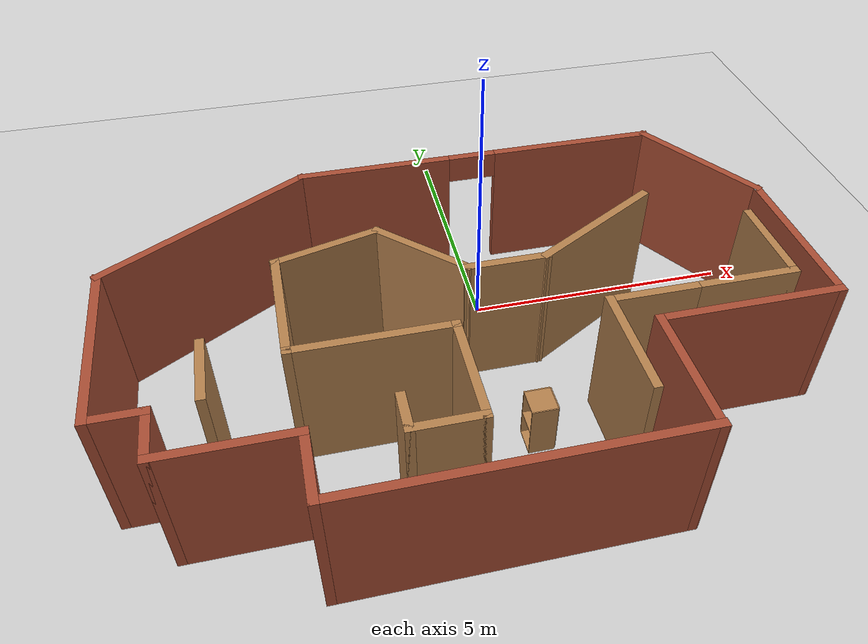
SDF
<sdf version="1.6">
 <world name="default">
  <light name="sun" type="directional">
   <pose>0 0 10 0 -0 0</pose>
   <diffuse>0.8 0.8 0.8 1</diffuse>
   <specular>0.1 0.1 0.1 1</specular>
   <attenuation>
    <range>1000</range>
    <constant>0.9</constant>
    <linear>0.01</linear>
    <quadratic>0.001</quadratic>
   </attenuation>
   <direction>-0.5 0.5 -1</direction>
  </light>
  <model name="ground_plane">
   <static>1</static>
   <link name="link">
    <collision name="collision">
     <geometry><plane><normal>0 0 1</normal><size>100 100</size></plane></geometry>
     <surface><friction><ode><mu>100</mu><mu2>50</mu2></ode></friction></surface>
    </collision>
    <visual name="visual">
     <cast_shadows>0</cast_shadows>
     <geometry><plane><normal>0 0 1</normal><size>100 100</size></plane></geometry>
     <material>
      <script><uri>file://media/materials/scripts/gazebo.material</uri><name>Gazebo/Grey</name></script>
     </material>
    </visual>
   </link>
  </model>
  <gravity>0 0 -9.8</gravity>
  <magnetic_field>6e-06 2.3e-05 -4.2e-05</magnetic_field>
  <atmosphere type="adiabatic"/>
  <physics name="default_physics" default="0" type="ode">
   <max_step_size>0.001</max_step_size>
   <real_time_factor>1</real_time_factor>
   <real_time_update_rate>1000</real_time_update_rate>
  </physics>
  <scene><ambient>0.4 0.4 0.4 1</ambient><background>0.7 0.7 0.7 1</background><shadows>1</shadows></scene>
  <spherical_coordinates>
   <surface_model>EARTH_WGS84</surface_model>
   <latitude_deg>0</latitude_deg>
   <longitude_deg>0</longitude_deg>
   <elevation>0</elevation>
   <heading_deg>0</heading_deg>
  </spherical_coordinates>
  <model name="myworld">
   <pose>-0.716396 -1.91106 0 0 -0 0</pose>
   <link name="Wall_10">
    <collision name="Wall_10_Collision">
     <geometry><box><size>1.75 0.15 2.5</size></box></geometry>
     <pose>0 0 1.25 0 -0 0</pose>
    </collision>
    <visual name="Wall_10_Visual">
     <pose>0 0 1.25 0 -0 0</pose>
     <geometry><box><size>1.75 0.15 2.5</size></box></geometry>
     <material>
      <script><uri>file://media/materials/scripts/gazebo.material</uri><name>Gazebo/Wood</name></script>
      <ambient>1 1 1 1</ambient>
     </material>
    </visual>
    <pose>5.32461 -0.097834 0 0 -0 1.5708</pose>
   </link>
   <link name="Wall_14">
    <collision name="Wall_14_Collision">
     <geometry><box><size>4.26973 0.15 2.5</size></box></geometry>
     <pose>0 0 1.25 0 -0 0</pose>
    </collision>
    <visual name="Wall_14_Visual">
     <pose>0 0 1.25 0 -0 0</pose>
     <geometry><box><size>4.26973 0.15 2.5</size></box></geometry>
     <material>
      <script><uri>file://media/materials/scripts/gazebo.material</uri><name>Gazebo/Bricks</name></script>
      <ambient>1 1 1 1</ambient>
     </material>
    </visual>
    <pose>-4.06148 2.53384 0 0 0 -2.59844</pose>
   </link>
   <link name="Wall_15">
    <collision name="Wall_15_Collision">
     <geometry><box><size>3.25 0.15 2.5</size></box></geometry>
     <pose>0 0 1.25 0 -0 0</pose>
    </collision>
    <visual name="Wall_15_Visual">
     <pose>0 0 1.25 0 -0 0</pose>
     <geometry><box><size>3.25 0.15 2.5</size></box></geometry>
     <material>
      <script><uri>file://media/materials/scripts/gazebo.material</uri><name>Gazebo/Bricks</name></script>
      <ambient>1 1 1 1</ambient>
     </material>
    </visual>
    <pose>-5.8249 -0.080771 0 0 0 -1.5708</pose>
   </link>
   <link name="Wall_16">
    <collision name="Wall_16_Collision">
     <geometry><box><size>1 0.15 2.5</size></box></geometry>
     <pose>0 0 1.25 0 -0 0</pose>
    </collision>
    <visual name="Wall_16_Visual">
     <pose>0 0 1.25 0 -0 0</pose>
     <geometry><box><size>1 0.15 2.5</size></box></geometry>
     <material>
      <script><uri>file://media/materials/scripts/gazebo.material</uri><name>Gazebo/Bricks</name></script>
      <ambient>1 1 1 1</ambient>
     </material>
    </visual>
    <pose>-5.3999 -1.63077 0 0 -0 0</pose>
   </link>
   <link name="Wall_17">
    <collision name="Wall_17_Collision">
     <geometry><box><size>1 0.15 2.5</size></box></geometry>
     <pose>0 0 1.25 0 -0 0</pose>
    </collision>
    <visual name="Wall_17_Visual">
     <pose>0 0 1.25 0 -0 0</pose>
     <geometry><box><size>1 0.15 2.5</size></box></geometry>
     <material>
      <script><uri>file://media/materials/scripts/gazebo.material</uri><name>Gazebo/Bricks</name></script>
      <ambient>1 1 1 1</ambient>
     </material>
    </visual>
    <pose>-4.9749 -2.05577 0 0 0 -1.5708</pose>
   </link>
   <link name="Wall_18">
    <collision name="Wall_18_Collision">
     <geometry><box><size>2.25 0.15 2.5</size></box></geometry>
     <pose>0 0 1.25 0 -0 0</pose>
    </collision>
    <visual name="Wall_18_Visual">
     <pose>0 0 1.25 0 -0 0</pose>
     <geometry><box><size>2.25 0.15 2.5</size></box></geometry>
     <material>
      <script><uri>file://media/materials/scripts/gazebo.material</uri><name>Gazebo/Bricks</name></script>
      <ambient>1 1 1 1</ambient>
     </material>
    </visual>
    <pose>-3.9249 -2.48077 0 0 -0 0</pose>
   </link>
   <link name="Wall_19">
    <collision name="Wall_19_Collision">
     <geometry><box><size>1.29565 0.15 2.5</size></box></geometry>
     <pose>0 0 1.25 0 -0 0</pose>
    </collision>
    <visual name="Wall_19_Visual">
     <pose>0 0 1.25 0 -0 0</pose>
     <geometry><box><size>1.29565 0.15 2.5</size></box></geometry>
     <material>
      <script><uri>file://media/materials/scripts/gazebo.material</uri><name>Gazebo/Bricks</name></script>
      <ambient>1 1 1 1</ambient>
     </material>
    </visual>
    <pose>-2.8749 -3.0536 0 0 0 -1.5708</pose>
   </link>
   <link name="Wall_20">
    <collision name="Wall_20_Collision">
     <geometry><box><size>5.75 0.15 2.5</size></box></geometry>
     <pose>0 0 1.25 0 -0 0</pose>
    </collision>
    <visual name="Wall_20_Visual">
     <pose>0 0 1.25 0 -0 0</pose>
     <geometry><box><size>5.75 0.15 2.5</size></box></geometry>
     <material>
      <script><uri>file://media/materials/scripts/gazebo.material</uri><name>Gazebo/Bricks</name></script>
      <ambient>1 1 1 1</ambient>
     </material>
    </visual>
    <pose>-0.057512 -3.62642 0 0 -0 0</pose>
   </link>
   <link name="Wall_21">
    <collision name="Wall_21_Collision">
     <geometry><box><size>2.29565 0.15 2.5</size></box></geometry>
     <pose>0 0 1.25 0 -0 0</pose>
    </collision>
    <visual name="Wall_21_Visual">
     <pose>0 0 1.25 0 -0 0</pose>
     <geometry><box><size>2.29565 0.15 2.5</size></box></geometry>
     <material>
      <script><uri>file://media/materials/scripts/gazebo.material</uri><name>Gazebo/Bricks</name></script>
      <ambient>1 1 1 1</ambient>
     </material>
    </visual>
    <pose>2.7251 -2.5536 0 0 -0 1.5708</pose>
   </link>
   <link name="Wall_22">
    <collision name="Wall_22_Collision">
     <geometry><box><size>3.25 0.15 2.5</size></box></geometry>
     <pose>0 0 1.25 0 -0 0</pose>
    </collision>
    <visual name="Wall_22_Visual">
     <pose>0 0 1.25 0 -0 0</pose>
     <geometry><box><size>3.25 0.15 2.5</size></box></geometry>
     <material>
      <script><uri>file://media/materials/scripts/gazebo.material</uri><name>Gazebo/Bricks</name></script>
      <ambient>1 1 1 1</ambient>
     </material>
    </visual>
    <pose>4.2751 -1.48077 0 0 -0 0</pose>
   </link>
   <link name="Wall_23">
    <collision name="Wall_23_Collision">
     <geometry><box><size>3 0.15 2.5</size></box></geometry>
     <pose>0 0 1.25 0 -0 0</pose>
    </collision>
    <visual name="Wall_23_Visual">
     <pose>0 0 1.25 0 -0 0</pose>
     <geometry><box><size>3 0.15 2.5</size></box></geometry>
     <material>
      <script><uri>file://media/materials/scripts/gazebo.material</uri><name>Gazebo/Bricks</name></script>
      <ambient>1 1 1 1</ambient>
     </material>
    </visual>
    <pose>5.8251 -0.055771 0 0 -0 1.5708</pose>
   </link>
   <link name="Wall_24">
    <collision name="Wall_24_Collision">
     <geometry><box><size>0.15 0.15 2.5</size></box></geometry>
     <pose>0 0 1.25 0 -0 0</pose>
    </collision>
    <visual name="Wall_24_Visual">
     <pose>0 0 1.25 0 -0 0</pose>
     <geometry><box><size>0.15 0.15 2.5</size></box></geometry>
     <material>
      <script><uri>file://media/materials/scripts/gazebo.material</uri><name>Gazebo/Grey</name></script>
      <ambient>1 1 1 1</ambient>
     </material>
    </visual>
    <pose>5.8251 1.36923 0 0 -0 0</pose>
   </link>
   <link name="Wall_25">
    <collision name="Wall_25_Collision">
     <geometry><box><size>2.74234 0.15 2.5</size></box></geometry>
     <pose>0 0 1.25 0 -0 0</pose>
    </collision>
    <visual name="Wall_25_Visual">
     <pose>0 0 1.25 0 -0 0</pose>
     <geometry><box><size>2.74234 0.15 2.5</size></box></geometry>
     <material>
      <script><uri>file://media/materials/scripts/gazebo.material</uri><name>Gazebo/Bricks</name></script>
      <ambient>1 1 1 1</ambient>
     </material>
    </visual>
    <pose>5.16352 2.48384 0 0 -0 2.10646</pose>
   </link>
   <link name="Wall_26">
    <pose>1.11714 3.59845 0 0 -0 3.14159</pose>
    <visual name="Wall_26_Visual_0">
     <pose>-1.89193 0 1.25 0 -0 0</pose>
     <geometry><box><size>3.16615 0.15 2.5</size></box></geometry>
     <material>
      <script><uri>file://media/materials/scripts/gazebo.material</uri><name>Gazebo/Bricks</name></script>
      <ambient>1 1 1 1</ambient>
     </material>
    </visual>
    <collision name="Wall_26_Collision_0">
     <geometry><box><size>3.16615 0.15 2.5</size></box></geometry>
     <pose>-1.89193 0 1.25 0 -0 0</pose>
    </collision>
    <visual name="Wall_26_Visual_1">
     <pose>2.03307 0 1.25 0 -0 0</pose>
     <geometry><box><size>2.88385 0.15 2.5</size></box></geometry>
     <material>
      <script><uri>file://media/materials/scripts/gazebo.material</uri><name>Gazebo/Bricks</name></script>
      <ambient>1 1 1 1</ambient>
     </material>
    </visual>
    <collision name="Wall_26_Collision_1">
     <geometry><box><size>2.88385 0.15 2.5</size></box></geometry>
     <pose>2.03307 0 1.25 0 -0 0</pose>
    </collision>
    <visual name="Wall_26_Visual_2">
     <pose>0.141146 0 2.25 0 -0 0</pose>
     <geometry><box><size>0.9 0.15 0.5</size></box></geometry>
     <material>
      <script><uri>file://media/materials/scripts/gazebo.material</uri><name>Gazebo/Bricks</name></script>
      <ambient>1 1 1 1</ambient>
     </material>
    </visual>
    <collision name="Wall_26_Collision_2">
     <geometry><box><size>0.9 0.15 0.5</size></box></geometry>
     <pose>0.141146 0 2.25 0 -0 0</pose>
    </collision>
   </link>
   <link name="Wall_28">
    <collision name="Wall_28_Collision">
     <geometry><box><size>1.25 0.15 2.5</size></box></geometry>
     <pose>0 0 1.25 0 -0 0</pose>
    </collision>
    <visual name="Wall_28_Visual">
     <pose>0 0 1.25 0 -0 0</pose>
     <geometry><box><size>1.25 0.15 2.5</size></box></geometry>
     <material>
      <script><uri>file://media/materials/scripts/gazebo.material</uri><name>Gazebo/Wood</name></script>
      <ambient>1 1 1 1</ambient>
     </material>
    </visual>
    <pose>-0.925386 -2.74783 0 0 -0 0</pose>
   </link>
   <link name="Wall_29">
    <collision name="Wall_29_Collision">
     <geometry><box><size>2 0.15 2.5</size></box></geometry>
     <pose>0 0 1.25 0 -0 0</pose>
    </collision>
    <visual name="Wall_29_Visual">
     <pose>0 0 1.25 0 -0 0</pose>
     <geometry><box><size>2 0.15 2.5</size></box></geometry>
     <material>
      <script><uri>file://media/materials/scripts/gazebo.material</uri><name>Gazebo/Wood</name></script>
      <ambient>1 1 1 1</ambient>
     </material>
    </visual>
    <pose>-0.375386 -1.82283 0 0 -0 1.5708</pose>
   </link>
   <link name="Wall_30">
    <collision name="Wall_30_Collision">
     <geometry><box><size>2.75 0.15 2.5</size></box></geometry>
     <pose>0 0 1.25 0 -0 0</pose>
    </collision>
    <visual name="Wall_30_Visual">
     <pose>0 0 1.25 0 -0 0</pose>
     <geometry><box><size>2.75 0.15 2.5</size></box></geometry>
     <material>
      <script><uri>file://media/materials/scripts/gazebo.material</uri><name>Gazebo/Wood</name></script>
      <ambient>1 1 1 1</ambient>
     </material>
    </visual>
    <pose>-1.67539 -0.897834 0 0 -0 3.14159</pose>
   </link>
   <link name="Wall_35">
    <collision name="Wall_35_Collision">
     <geometry><box><size>2.25 0.15 2.5</size></box></geometry>
     <pose>0 0 1.25 0 -0 0</pose>
    </collision>
    <visual name="Wall_35_Visual">
     <pose>0 0 1.25 0 -0 0</pose>
     <geometry><box><size>2.25 0.15 2.5</size></box></geometry>
     <material>
      <script><uri>file://media/materials/scripts/gazebo.material</uri><name>Gazebo/Wood</name></script>
      <ambient>1 1 1 1</ambient>
     </material>
    </visual>
    <pose>-2.97539 0.152166 0 0 -0 1.5708</pose>
   </link>
   <link name="Wall_36">
    <collision name="Wall_36_Collision">
     <geometry><box><size>2 0.15 2.5</size></box></geometry>
     <pose>0 0 1.25 0 -0 0</pose>
    </collision>
    <visual name="Wall_36_Visual">
     <pose>0 0 1.25 0 -0 0</pose>
     <geometry><box><size>2 0.15 2.5</size></box></geometry>
     <material>
      <script><uri>file://media/materials/scripts/gazebo.material</uri><name>Gazebo/Wood</name></script>
      <ambient>1 1 1 1</ambient>
     </material>
    </visual>
    <pose>-2.0819 1.44157 0 0 -0 0.261799</pose>
   </link>
   <link name="Wall_37">
    <collision name="Wall_37_Collision">
     <geometry><box><size>2 0.15 2.5</size></box></geometry>
     <pose>0 0 1.25 0 -0 0</pose>
    </collision>
    <visual name="Wall_37_Visual">
     <pose>0 0 1.25 0 -0 0</pose>
     <geometry><box><size>2 0.15 2.5</size></box></geometry>
     <material>
      <script><uri>file://media/materials/scripts/gazebo.material</uri><name>Gazebo/Wood</name></script>
      <ambient>1 1 1 1</ambient>
     </material>
    </visual>
    <pose>-0.534349 1.02691 0 0 0 -0.785398</pose>
   </link>
   <link name="Wall_38">
    <collision name="Wall_38_Collision">
     <geometry><box><size>1.5 0.15 2.5</size></box></geometry>
     <pose>0 0 1.25 0 -0 0</pose>
    </collision>
    <visual name="Wall_38_Visual">
     <pose>0 0 1.25 0 -0 0</pose>
     <geometry><box><size>1.5 0.15 2.5</size></box></geometry>
     <material>
      <script><uri>file://media/materials/scripts/gazebo.material</uri><name>Gazebo/Wood</name></script>
      <ambient>1 1 1 1</ambient>
     </material>
    </visual>
    <pose>0.794724 0.372834 0 0 -0 0</pose>
   </link>
   <link name="Wall_39">
    <collision name="Wall_39_Collision">
     <geometry><box><size>2.75 0.15 2.5</size></box></geometry>
     <pose>0 0 1.25 0 -0 0</pose>
    </collision>
    <visual name="Wall_39_Visual">
     <pose>0 0 1.25 0 -0 0</pose>
     <geometry><box><size>2.75 0.15 2.5</size></box></geometry>
     <material>
      <script><uri>file://media/materials/scripts/gazebo.material</uri><name>Gazebo/Wood</name></script>
      <ambient>1 1 1 1</ambient>
     </material>
    </visual>
    <pose>2.59556 1.02283 0 0 -0 0.523599</pose>
   </link>
   <link name="Wall_41">
    <collision name="Wall_41_Collision">
     <geometry><box><size>1.25 0.15 2.5</size></box></geometry>
     <pose>0 0 1.25 0 -0 0</pose>
    </collision>
    <visual name="Wall_41_Visual">
     <pose>0 0 1.25 0 -0 0</pose>
     <geometry><box><size>1.25 0.15 2.5</size></box></geometry>
     <material>
      <script><uri>file://media/materials/scripts/gazebo.material</uri><name>Gazebo/Wood</name></script>
      <ambient>1 1 1 1</ambient>
     </material>
    </visual>
    <pose>-4.2259 -0.982226 0 0 0 -1.5708</pose>
   </link>
   <link name="Wall_5">
    <collision name="Wall_5_Collision">
     <geometry><box><size>0.75 0.15 2.5</size></box></geometry>
     <pose>0 0 1.25 0 -0 0</pose>
    </collision>
    <visual name="Wall_5_Visual">
     <pose>0 0 1.25 0 -0 0</pose>
     <geometry><box><size>0.75 0.15 2.5</size></box></geometry>
     <material>
      <script><uri>file://media/materials/scripts/gazebo.material</uri><name>Gazebo/Wood</name></script>
      <ambient>1 1 1 1</ambient>
     </material>
    </visual>
    <pose>-1.47539 -2.44783 0 0 0 -1.5708</pose>
   </link>
   <link name="Wall_7">
    <collision name="Wall_7_Collision">
     <geometry><box><size>2 0.15 2.5</size></box></geometry>
     <pose>0 0 1.25 0 -0 0</pose>
    </collision>
    <visual name="Wall_7_Visual">
     <pose>0 0 1.25 0 -0 0</pose>
     <geometry><box><size>2 0.15 2.5</size></box></geometry>
     <material>
      <script><uri>file://media/materials/scripts/gazebo.material</uri><name>Gazebo/Wood</name></script>
      <ambient>1 1 1 1</ambient>
     </material>
    </visual>
    <pose>2.12461 -1.82283 0 0 -0 1.5708</pose>
   </link>
   <link name="Wall_8">
    <collision name="Wall_8_Collision">
     <geometry><box><size>1.75 0.15 2.5</size></box></geometry>
     <pose>0 0 1.25 0 -0 0</pose>
    </collision>
    <visual name="Wall_8_Visual">
     <pose>0 0 1.25 0 -0 0</pose>
     <geometry><box><size>1.75 0.15 2.5</size></box></geometry>
     <material>
      <script><uri>file://media/materials/scripts/gazebo.material</uri><name>Gazebo/Wood</name></script>
      <ambient>1 1 1 1</ambient>
     </material>
    </visual>
    <pose>2.92461 -0.897834 0 0 -0 0</pose>
   </link>
   <link name="Wall_9">
    <collision name="Wall_9_Collision">
     <geometry><box><size>1.75 0.15 2.5</size></box></geometry>
     <pose>0 0 1.25 0 -0 0</pose>
    </collision>
    <visual name="Wall_9_Visual">
     <pose>0 0 1.25 0 -0 0</pose>
     <geometry><box><size>1.75 0.15 2.5</size></box></geometry>
     <material>
      <script><uri>file://media/materials/scripts/gazebo.material</uri><name>Gazebo/Wood</name></script>
      <ambient>1 1 1 1</ambient>
     </material>
    </visual>
    <pose>4.52461 -0.897834 0 0 -0 0</pose>
   </link>
   <static>1</static>
  </model>
  <model name="cabinet">
   <static>1</static>
   <link name="cabinet_bottom_plate">
    <inertial>
     <pose>0 0 -1 0 -0 0</pose>
     <inertia><ixx>2.05</ixx><ixy>0</ixy><ixz>0</ixz><iyy>2.05</iyy><iyz>0</iyz><izz>2.05</izz></inertia>
     <mass>25</mass>
    </inertial>
    <collision name="cabinet_bottom_plate_geom">
     <pose>0 0 0.01 0 -0 0</pose>
     <geometry><box><size>0.45 0.45 0.02</size></box></geometry>
    </collision>
    <visual name="cabinet_bottom_plate_geom_visual">
     <pose>0 0 0.01 0 -0 0</pose>
     <geometry><box><size>0.45 0.45 0.02</size></box></geometry>
     <material>
      <script><uri>file://media/materials/scripts/gazebo.material</uri><name>Gazebo/Wood</name></script>
     </material>
    </visual>
    <collision name="cabinet_bottom_plate_geom_cabinet_back_plate">
     <pose>0.235 0 0.51 0 -0 0</pose>
     <geometry><box><size>0.02 0.45 1.02</size></box></geometry>
    </collision>
    <visual name="cabinet_bottom_plate_geom_cabinet_back_plate_visual">
     <pose>0.235 0 0.51 0 -0 0</pose>
     <geometry><box><size>0.02 0.45 1.02</size></box></geometry>
     <material>
      <script><uri>file://media/materials/scripts/gazebo.material</uri><name>Gazebo/Wood</name></script>
     </material>
    </visual>
    <collision name="cabinet_bottom_plate_geom_cabinet_left_plate">
     <pose>0 0.235 0.51 0 -0 0</pose>
     <geometry><box><size>0.45 0.02 1.02</size></box></geometry>
    </collision>
    <visual name="cabinet_bottom_plate_geom_cabinet_left_plate_visual">
     <pose>0 0.235 0.51 0 -0 0</pose>
     <geometry><box><size>0.45 0.02 1.02</size></box></geometry>
     <material>
      <script><uri>file://media/materials/scripts/gazebo.material</uri><name>Gazebo/Wood</name></script>
     </material>
    </visual>
    <collision name="cabinet_bottom_plate_geom_cabinet_middle_plate">
     <pose>0 0 0.51 0 -0 0</pose>
     <geometry><box><size>0.45 0.45 0.02</size></box></geometry>
    </collision>
    <visual name="cabinet_bottom_plate_geom_cabinet_middle_plate_visual">
     <pose>0 0 0.51 0 -0 0</pose>
     <geometry><box><size>0.45 0.45 0.02</size></box></geometry>
     <material>
      <script><uri>file://media/materials/scripts/gazebo.material</uri><name>Gazebo/Wood</name></script>
     </material>
    </visual>
    <collision name="cabinet_bottom_plate_geom_cabinet_right_plate">
     <pose>0 -0.235 0.51 0 -0 0</pose>
     <geometry><box><size>0.45 0.02 1.02</size></box></geometry>
    </collision>
    <visual name="cabinet_bottom_plate_geom_cabinet_right_plate_visual">
     <pose>0 -0.235 0.51 0 -0 0</pose>
     <geometry><box><size>0.45 0.02 1.02</size></box></geometry>
     <material>
      <script><uri>file://media/materials/scripts/gazebo.material</uri><name>Gazebo/Wood</name></script>
     </material>
    </visual>
    <collision name="cabinet_bottom_plate_geom_cabinet_top_plate">
     <pose>0 0 1.01 0 -0 0</pose>
     <geometry><box><size>0.45 0.45 0.02</size></box></geometry>
    </collision>
    <visual name="cabinet_bottom_plate_geom_cabinet_top_plate_visual">
     <pose>0 0 1.01 0 -0 0</pose>
     <geometry><box><size>0.45 0.45 0.02</size></box></geometry>
     <material>
      <script><uri>file://media/materials/scripts/gazebo.material</uri><name>Gazebo/Wood</name></script>
     </material>
    </visual>
   </link>
   <pose>0.194924 -3.37242 0 0 -0 0</pose>
  </model>
 </world>
</sdf>
